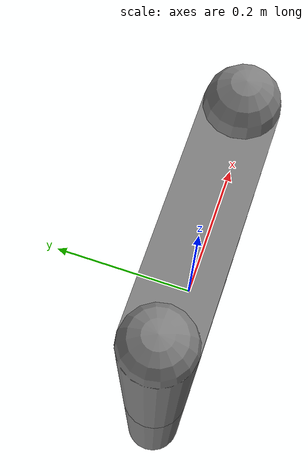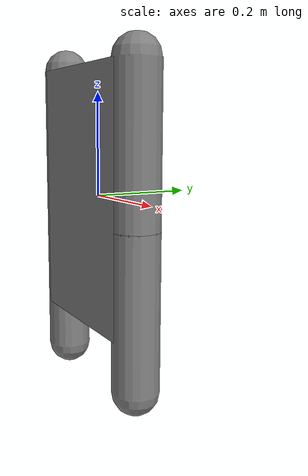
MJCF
<mujoco model="unnamed_model">
  <default>
    <default class="/"/>
    <default class="left_arm/"/>
    <default class="right_arm/"/>
  </default>
  <worldbody>
    <geom name="torso" class="/" type="box" size="0.14999999999999999 0.044999999999999998 0.25"/>
    <site name="//unnamed_site_0" class="/" size="9.9999999999999995e-07 9.9999999999999995e-07 9.9999999999999995e-07" pos="-0.14999999999999999 0 0.25"/>
    <body pos="-0.14999999999999999 0 0.25" name="left_arm/">
      <body name="left_arm/upper_arm">
        <joint name="left_arm/shoulder" class="left_arm/" type="ball"/>
        <geom name="left_arm/upper_arm" class="left_arm/" type="capsule" size="0.044999999999999998 0.14999999999999999" pos="0 0 -0.14999999999999999"/>
        <body name="left_arm/forearm" pos="0 0 -0.29999999999999999">
          <joint name="left_arm/elbow" class="left_arm/" type="hinge" axis="0 1 0"/>
          <geom name="left_arm/forearm" class="left_arm/" type="capsule" size="0.044999999999999998 0.14999999999999999" pos="0 0 -0.14999999999999999"/>
        </body>
      </body>
    </body>
    <site name="//unnamed_site_1" class="/" size="9.9999999999999995e-07 9.9999999999999995e-07 9.9999999999999995e-07" pos="0.14999999999999999 0 0.25"/>
    <body pos="0.14999999999999999 0 0.25" name="right_arm/">
      <body name="right_arm/upper_arm">
        <joint name="right_arm/shoulder" class="right_arm/" type="ball"/>
        <geom name="right_arm/upper_arm" class="right_arm/" type="capsule" size="0.044999999999999998 0.14999999999999999" pos="0 0 -0.14999999999999999"/>
        <body name="right_arm/forearm" pos="0 0 -0.29999999999999999">
          <joint name="right_arm/elbow" class="right_arm/" type="hinge" axis="0 1 0"/>
          <geom name="right_arm/forearm" class="right_arm/" type="capsule" size="0.044999999999999998 0.14999999999999999" pos="0 0 -0.14999999999999999"/>
        </body>
      </body>
    </body>
  </worldbody>
</mujoco>
